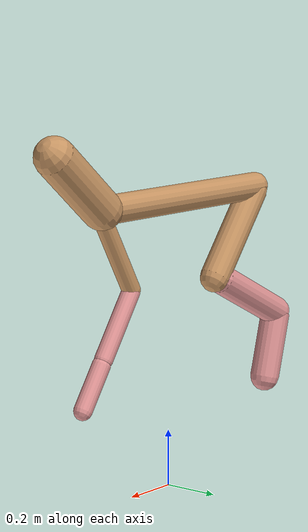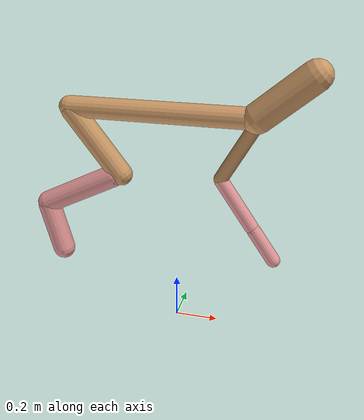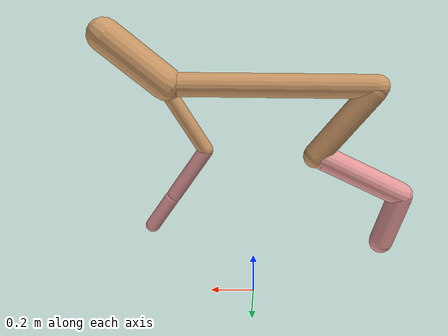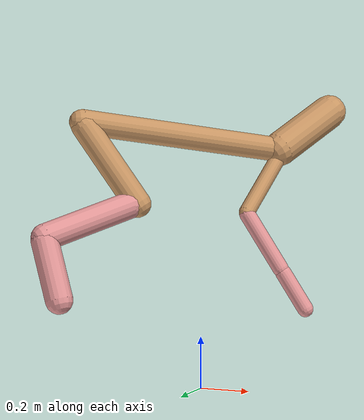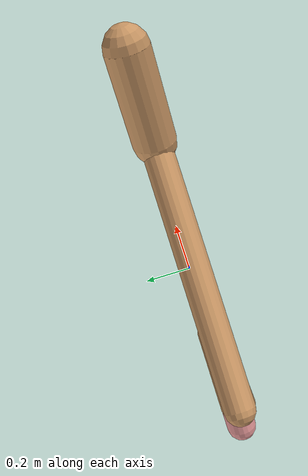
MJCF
<mujoco model="cheetah">
  <compiler angle="radian" coordinate="local" inertiafromgeom="true" settotalmass="14" />
  <default>
    <joint armature=".1" damping=".01" limited="true" solimplimit="0 .8 .03" solreflimit=".02 1" stiffness="8" />
    <geom conaffinity="0" condim="3" contype="1" friction="0.8 .1 .1" rgba="0.8 0.6 .4 1" solimp="0.0 0.8 0.01" solref="0.02 1" />
    <motor ctrllimited="true" ctrlrange="-1 1" />
  </default>
  <size nstack="300000" nuser_geom="1" />
  <option gravity="0 0 -9.81" timestep="0.01" />
  <worldbody>
    <body name="torso" pos="0.0 0.0 1.0090991280270671">
      <joint armature="0" axis="1 0 0" damping="0" limited="false" name="ignorex" pos="0 0 0" stiffness="0" type="slide" />
      <joint armature="0" axis="0 0 1" damping="0" limited="false" name="ignorez" pos="0 0 0" stiffness="0" type="slide" />
      <joint armature="0" axis="0 1 0" damping="0" limited="false" name="ignorey" pos="0 0 0" stiffness="0" type="hinge" />
      <geom fromto="-0.5 0.0 0.0 0.36365161592719 0.0 0.0" name="torso" size="0.04920029024786095" type="capsule" />
      <geom axisangle="0 1 0 .87" name="head" pos="0.46365161592718995 0.0 0.1" size="0.06954790659609243 0.15" type="capsule" />

      <body name="bthigh" pos="-.5 0 0">
        <joint axis="0 1 0" damping="6" name="bthigh" pos="0 0 0" range="-.52 1.05" stiffness="240" type="hinge" />
        <geom axisangle="0 1 0 -3.8" name="bthigh" pos="0.12315835114954843 0.0 -0.16010585649441295" size="0.05291826743842277 0.18298251996942774" type="capsule" />
        <body name="bshin" pos="0.20631670229909685 0.0 -0.3102117129888259">
          <joint axis="0 1 0" damping="4.5" name="bshin" pos="0 0 0" range="-.785 .785" stiffness="180" type="hinge" />
          <geom axisangle="0 1 0 -2.03" name="bshin" pos="-0.1751440675620898 0.0 -0.0875720337810449" rgba="0.9 0.6 0.6 1" size="0.05291826743842277 0.18929226203733904" type="capsule" />
          <body name="bfoot" pos="-0.3502881351241796 0.0 -0.1751440675620898">
            <joint axis="0 1 0" damping="3" name="bfoot" pos="0 0 0" range="-.4 .785" stiffness="120" type="hinge" />
            <geom axisangle="0 1 0 -.27" name="bfoot" pos="0.03727539556701641 0.0 -0.12052377900001972" rgba="0.9 0.6 0.6 1" size="0.05291826743842277 0.11862315087673246" type="capsule" />
            <inertial mass="10" />
          </body>
        </body>
      </body>
      <body name="fthigh" pos="0.36365161592719 0.0 0.0">
        <joint axis="0 1 0" damping="4.5" name="fthigh" pos="0 0 0" range="-1.5 0.8" stiffness="180" type="hinge" />
        <geom axisangle="0 1 0 .52" name="fthigh" pos="-0.08390928695472673 0.0 -0.14384449192238866" size="0.0322 0.16060485570738942" type="capsule" />
        <body name="fshin" pos="-0.16781857390945346 0.0 -0.2876889838447773">
          <joint axis="0 1 0" damping="3" name="fshin" pos="0 0 0" range="-1.2 1.1" stiffness="120" type="hinge" />
          <geom axisangle="0 1 0 -.6" name="fshin" pos="0.07788129713708856 0.0 -0.10783564218981494" rgba="0.9 0.6 0.6 1" size="0.0322 0.12800086244348327" type="capsule" />
          <body name="ffoot" pos="0.15576259427417713 0.0 -0.21567128437962987">
            <joint axis="0 1 0" damping="1.5" name="ffoot" pos="0 0 0" range="-3.1 -0.3" stiffness="60" type="hinge" />
            <geom axisangle="0 1 0 -.6" name="ffoot" pos="0.05285659751625504 0.0 -0.08222137391417451" rgba="0.9 0.6 0.6 1" size="0.0322 0.0845288714249418" type="capsule" />
            <inertial mass="10" />
          </body>
        </body>
      </body>
    </body>
  </worldbody>
  <actuator>
    <motor gear="120" joint="bthigh" name="bthigh" />
    <motor gear="90" joint="bshin" name="bshin" />
    <motor gear="60" joint="bfoot" name="bfoot" />
    <motor gear="120" joint="fthigh" name="fthigh" />
    <motor gear="60" joint="fshin" name="fshin" />
    <motor gear="30" joint="ffoot" name="ffoot" />
  </actuator>
</mujoco>
